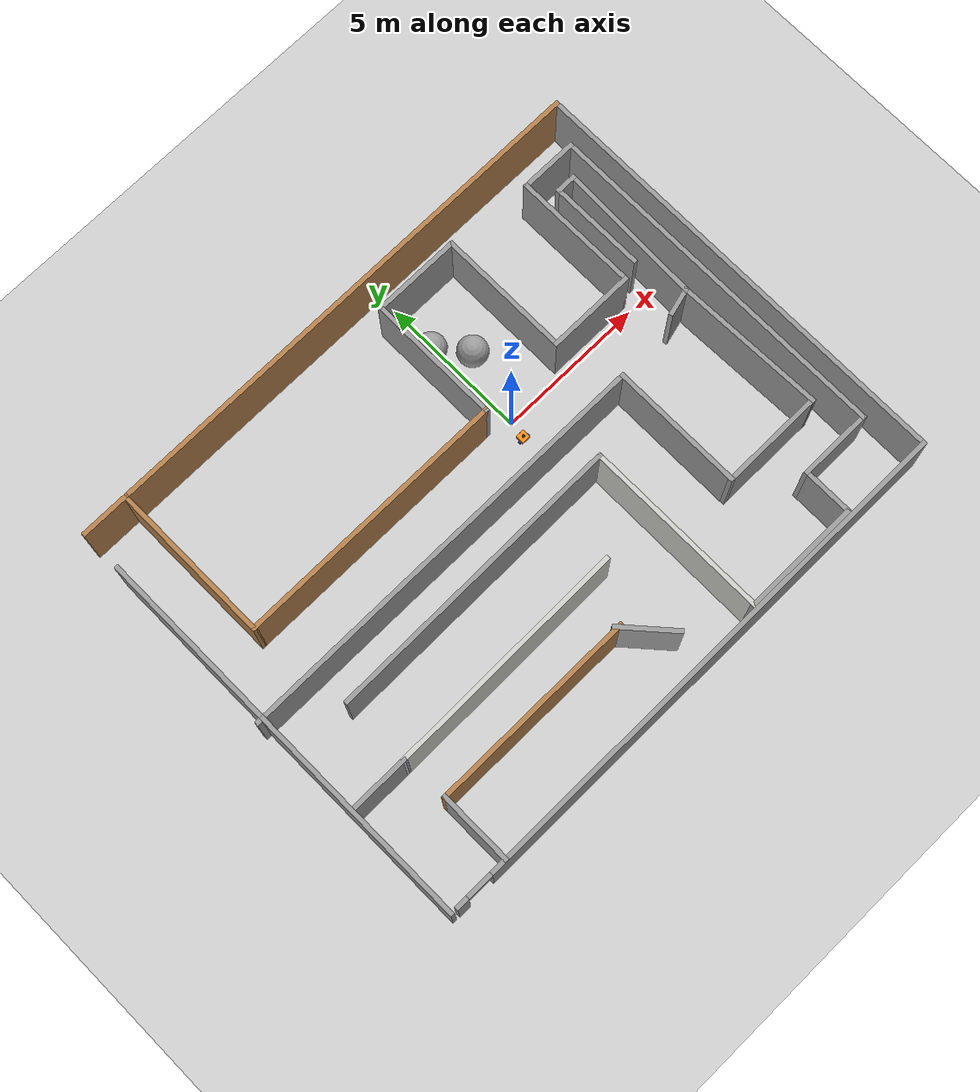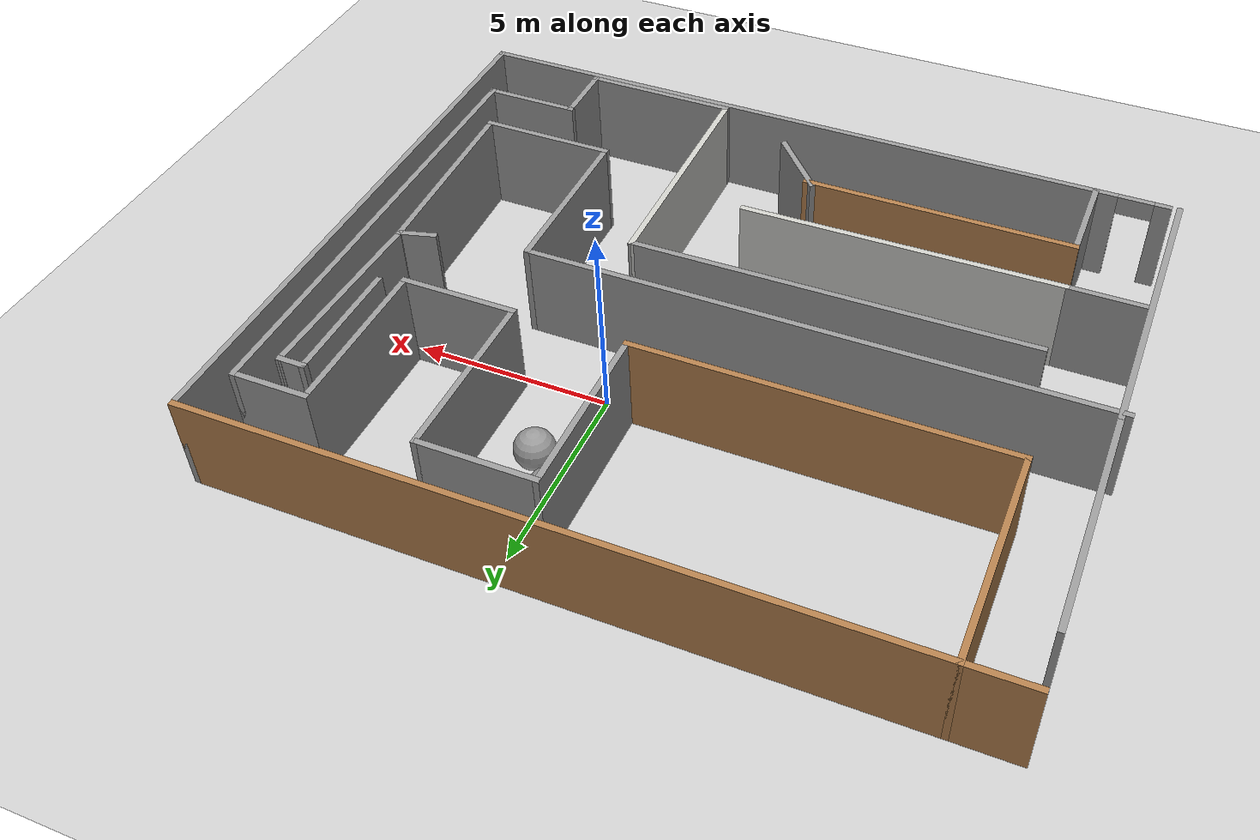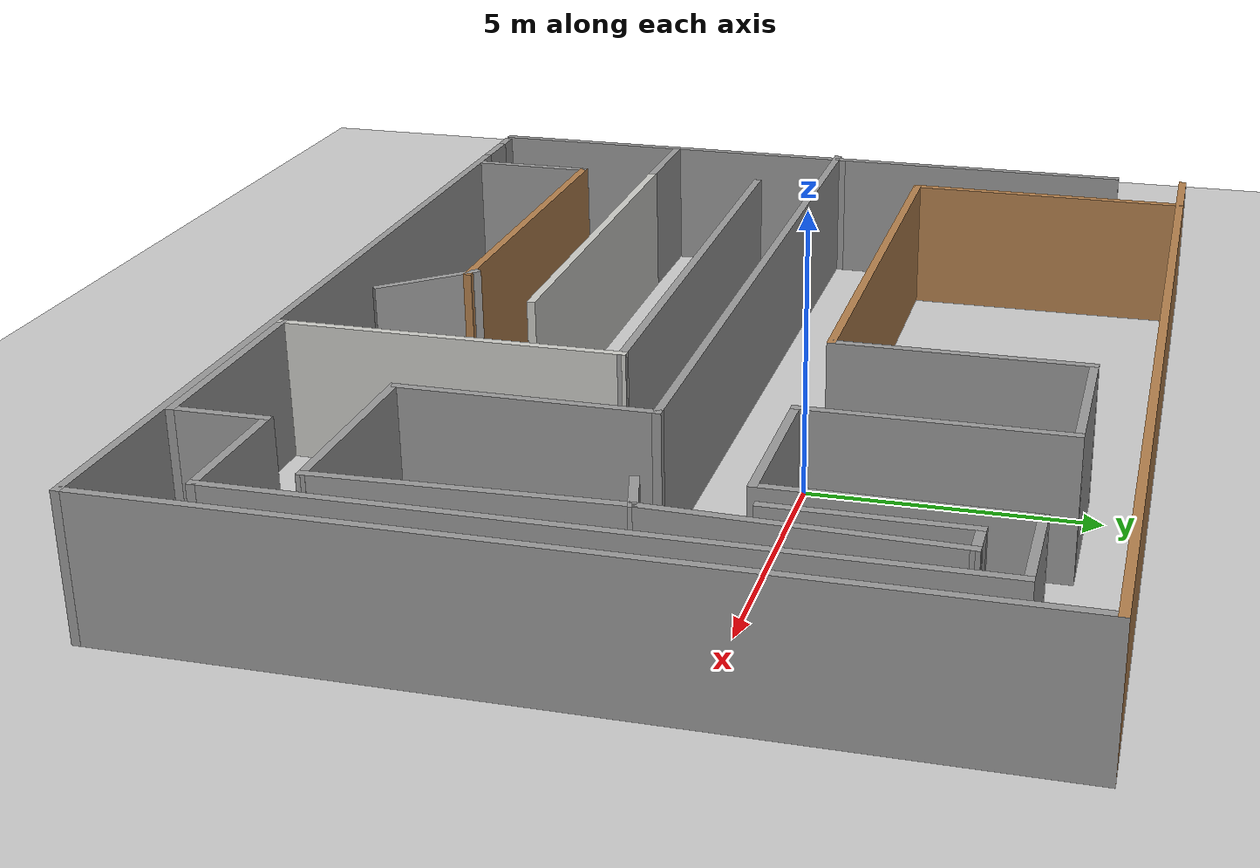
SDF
<sdf version="1.7">
 <world name="default">
  <light name="sun" type="directional">
   <pose>0 0 10 0 -0 0</pose>
   <diffuse>0.8 0.8 0.8 1</diffuse>
   <specular>0.2 0.2 0.2 1</specular>
   <attenuation>
    <range>1000</range>
    <constant>0.9</constant>
    <linear>0.01</linear>
    <quadratic>0.001</quadratic>
   </attenuation>
   <direction>-0.5 0.1 -0.9</direction>
   <spot><inner_angle>0</inner_angle><outer_angle>0</outer_angle><falloff>0</falloff></spot>
  </light>
  <model name="ground_plane">
   <static>1</static>
   <link name="link">
    <collision name="collision">
     <geometry><plane><normal>0 0 1</normal><size>100 100</size></plane></geometry>
     <surface>
      <contact><collide_bitmask>65535</collide_bitmask></contact>
      <friction><ode><mu>100</mu><mu2>50</mu2></ode></friction>
     </surface>
    </collision>
    <visual name="visual">
     <cast_shadows>0</cast_shadows>
     <geometry><plane><normal>0 0 1</normal><size>100 100</size></plane></geometry>
     <material>
      <script><uri>file://media/materials/scripts/gazebo.material</uri><name>Gazebo/Grey</name></script>
     </material>
    </visual>
   </link>
  </model>
  <gravity>0 0 -9.8</gravity>
  <magnetic_field>6e-06 2.3e-05 -4.2e-05</magnetic_field>
  <atmosphere type="adiabatic"/>
  <physics type="ode">
   <max_step_size>0.001</max_step_size>
   <real_time_factor>1</real_time_factor>
   <real_time_update_rate>1000</real_time_update_rate>
  </physics>
  <scene><ambient>0.4 0.4 0.4 1</ambient><background>0.7 0.7 0.7 1</background><shadows>1</shadows></scene>
  <spherical_coordinates>
   <surface_model>EARTH_WGS84</surface_model>
   <latitude_deg>0</latitude_deg>
   <longitude_deg>0</longitude_deg>
   <elevation>0</elevation>
   <heading_deg>0</heading_deg>
  </spherical_coordinates>
  <model name="my_bot">
   <link name="base_link">
    <inertial>
     <pose>0.076889 0 0.065222 0 -0 0</pose>
     <mass>0.9</mass>
     <inertia>
      <ixx>0.00854169</ixx>
      <ixy>0</ixy>
      <ixz>0.00217198</ixz>
      <iyy>0.0103994</iyy>
      <iyz>0</iyz>
      <izz>0.00978269</izz>
     </inertia>
    </inertial>
    <collision name="base_link_fixed_joint_lump__chassis_collision">
     <pose>0.05 0 0.075 0 -0 0</pose>
     <geometry><box><size>0.3 0.3 0.15</size></box></geometry>
    </collision>
    <collision name="base_link_fixed_joint_lump__caster_wheel_collision_1">
     <pose>0.14 0 0 0 -0 0</pose>
     <geometry><sphere><radius>0.05</radius></sphere></geometry>
     <surface><friction><ode><mu>0.0001</mu><mu2>0.0001</mu2></ode></friction></surface>
    </collision>
    <collision name="base_link_fixed_joint_lump__laser_frame_collision_2">
     <pose>0.022 0 0.212 0 -0 0</pose>
     <geometry><cylinder><length>0.04</length><radius>0.05</radius></cylinder></geometry>
    </collision>
    <visual name="base_link_fixed_joint_lump__chassis_visual">
     <pose>0.05 0 0.075 0 -0 0</pose>
     <geometry><box><size>0.3 0.3 0.15</size></box></geometry>
     <material>
      <script><name>Gazebo/Orange</name><uri>file://media/materials/scripts/gazebo.material</uri></script>
     </material>
    </visual>
    <visual name="base_link_fixed_joint_lump__camera_link_visual_1">
     <pose>0.176 0 0.181 0 0.18 0</pose>
     <geometry><box><size>0.01 0.03 0.03</size></box></geometry>
     <material>
      <script><name>Gazebo/Black</name><uri>file://media/materials/scripts/gazebo.material</uri></script>
     </material>
    </visual>
    <visual name="base_link_fixed_joint_lump__camera_link_visual_2">
     <pose>0.167049 0 0.131808 0 0.18 0</pose>
     <geometry><cylinder><length>0.1</length><radius>0.002</radius></cylinder></geometry>
     <material>
      <script><name>Gazebo/Black</name><uri>file://media/materials/scripts/gazebo.material</uri></script>
     </material>
    </visual>
    <visual name="base_link_fixed_joint_lump__caster_wheel_visual_3">
     <pose>0.14 0 0 0 -0 0</pose>
     <geometry><sphere><radius>0.05</radius></sphere></geometry>
     <material>
      <script><name>Gazebo/White</name><uri>file://media/materials/scripts/gazebo.material</uri></script>
     </material>
    </visual>
    <visual name="base_link_fixed_joint_lump__face_link_visual_4">
     <pose>0.2 0.05 0.085 3.14159 1.57079 3.14159</pose>
     <geometry><cylinder><length>0.002</length><radius>0.01</radius></cylinder></geometry>
     <material>
      <script><name>Gazebo/Black</name><uri>file://media/materials/scripts/gazebo.material</uri></script>
     </material>
    </visual>
    <visual name="base_link_fixed_joint_lump__face_link_visual_5">
     <pose>0.2 -0.05 0.085 3.14159 1.57079 3.14159</pose>
     <geometry><cylinder><length>0.002</length><radius>0.01</radius></cylinder></geometry>
     <material>
      <script><name>Gazebo/Black</name><uri>file://media/materials/scripts/gazebo.material</uri></script>
     </material>
    </visual>
    <visual name="base_link_fixed_joint_lump__face_link_visual_6">
     <pose>0.189 0 0.075 0 1.5 0</pose>
     <geometry><cylinder><length>0.02</length><radius>0.05</radius></cylinder></geometry>
     <material>
      <script><name>Gazebo/Black</name><uri>file://media/materials/scripts/gazebo.material</uri></script>
     </material>
    </visual>
    <visual name="base_link_fixed_joint_lump__laser_frame_visual_7">
     <pose>0.022 0 0.212 0 -0 0</pose>
     <geometry><cylinder><length>0.04</length><radius>0.05</radius></cylinder></geometry>
     <material>
      <script><name>Gazebo/Black</name><uri>file://media/materials/scripts/gazebo.material</uri></script>
     </material>
    </visual>
    <visual name="base_link_fixed_joint_lump__laser_frame_visual_8">
     <pose>0.022 0 0.162 0 -0 0</pose>
     <geometry><cylinder><length>0.1</length><radius>0.01</radius></cylinder></geometry>
     <material>
      <script><name>Gazebo/Black</name><uri>file://media/materials/scripts/gazebo.material</uri></script>
     </material>
    </visual>
    <sensor name="camera" type="camera">
     <visualize>1</visualize>
     <update_rate>10</update_rate>
     <camera>
      <horizontal_fov>1.089</horizontal_fov>
      <image><format>R8G8B8</format><width>640</width><height>480</height></image>
      <clip><near>0.05</near><far>8</far></clip>
     </camera>
     <plugin name="camera_controller" filename="libgazebo_ros_camera.so">
      <frame_name>camera_link_optical</frame_name>
     </plugin>
     <pose>0.176 0 0.181 0 0.18 0</pose>
    </sensor>
    <sensor name="laser" type="ray">
     <visualize>0</visualize>
     <update_rate>10</update_rate>
     <ray>
      <scan>
       <horizontal>
        <samples>360</samples>
        <min_angle>-3.14</min_angle>
        <max_angle>3.14</max_angle>
        <resolution>1</resolution>
       </horizontal>
       <vertical><samples>1</samples><min_angle>0</min_angle><max_angle>0</max_angle></vertical>
      </scan>
      <range><min>0.3</min><max>12</max></range>
     </ray>
     <plugin name="laser_controller" filename="libgazebo_ros_ray_sensor.so">
      <ros><argument>~/out:=scan</argument></ros>
      <output_type>sensor_msgs/LaserScan</output_type>
      <frame_name>laser_frame</frame_name>
     </plugin>
     <pose>0.022 0 0.212 0 -0 0</pose>
    </sensor>
   </link>
   <joint name="left_wheel_joint" type="revolute">
    <pose relative_to="base_link">0 0.175 0 -1.5708 0 0</pose>
    <parent>base_link</parent>
    <child>left_wheel</child>
    <axis>
     <xyz>0 0 1</xyz>
     <limit><lower>-1e+16</lower><upper>1e+16</upper></limit>
     <dynamics><spring_reference>0</spring_reference><spring_stiffness>0</spring_stiffness></dynamics>
    </axis>
   </joint>
   <link name="left_wheel">
    <pose relative_to="left_wheel_joint">0 0 0 0 -0 0</pose>
    <inertial>
     <mass>0.05</mass>
     <inertia>
      <ixx>3.79167e-05</ixx>
      <ixy>0</ixy>
      <ixz>0</ixz>
      <iyy>3.79167e-05</iyy>
      <iyz>0</iyz>
      <izz>6.25e-05</izz>
     </inertia>
    </inertial>
    <collision name="left_wheel_collision"><geometry><sphere><radius>0.05</radius></sphere></geometry></collision>
    <visual name="left_wheel_visual">
     <geometry><cylinder><length>0.04</length><radius>0.05</radius></cylinder></geometry>
     <material>
      <script><name>Gazebo/Blue</name><uri>file://media/materials/scripts/gazebo.material</uri></script>
     </material>
    </visual>
   </link>
   <joint name="right_wheel_joint" type="revolute">
    <pose relative_to="base_link">0 -0.175 0 1.5708 -0 0</pose>
    <parent>base_link</parent>
    <child>right_wheel</child>
    <axis>
     <xyz>0 0 -1</xyz>
     <limit><lower>-1e+16</lower><upper>1e+16</upper></limit>
     <dynamics><spring_reference>0</spring_reference><spring_stiffness>0</spring_stiffness></dynamics>
    </axis>
   </joint>
   <link name="right_wheel">
    <pose relative_to="right_wheel_joint">0 0 0 0 -0 0</pose>
    <inertial>
     <mass>0.05</mass>
     <inertia>
      <ixx>3.79167e-05</ixx>
      <ixy>0</ixy>
      <ixz>0</ixz>
      <iyy>3.79167e-05</iyy>
      <iyz>0</iyz>
      <izz>6.25e-05</izz>
     </inertia>
    </inertial>
    <collision name="right_wheel_collision">
     <geometry><sphere><radius>0.05</radius></sphere></geometry>
    </collision>
    <visual name="right_wheel_visual">
     <geometry><cylinder><length>0.04</length><radius>0.05</radius></cylinder></geometry>
     <material>
      <script><name>Gazebo/Blue</name><uri>file://media/materials/scripts/gazebo.material</uri></script>
     </material>
    </visual>
   </link>
   <static>0</static>
   <plugin name="diff_drive" filename="libgazebo_ros_diff_drive.so">
    <left_joint>left_wheel_joint</left_joint>
    <right_joint>right_wheel_joint</right_joint>
    <wheel_separation>0.35</wheel_separation>
    <wheel_diameter>0.1</wheel_diameter>
    <max_wheel_torque>200</max_wheel_torque>
    <max_wheel_acceleration>10.0</max_wheel_acceleration>
    <odometry_frame>odom</odometry_frame>
    <robot_base_frame>base_link</robot_base_frame>
    <publish_odom>1</publish_odom>
    <publish_odom_tf>1</publish_odom_tf>
    <publish_wheel_tf>1</publish_wheel_tf>
   </plugin>
   <pose>-0.061227 -0.60252 0.049997 1.5e-05 -2.2e-05 1.57424</pose>
  </model>
  <model name="maze">
   <pose>-2.3605 -1.79617 0 0 -0 0</pose>
   <link name="Wall_0">
    <collision name="Wall_0_Collision">
     <geometry><box><size>6 0.15 2.5</size></box></geometry>
     <pose>0 0 1.25 0 -0 0</pose>
    </collision>
    <visual name="Wall_0_Visual">
     <pose>0 0 1.25 0 -0 0</pose>
     <geometry><box><size>6 0.15 2.5</size></box></geometry>
     <material>
      <script><uri>file://media/materials/scripts/gazebo.material</uri><name>Gazebo/Grey</name></script>
      <ambient>1 1 1 1</ambient>
     </material>
     <meta><layer>0</layer></meta>
    </visual>
    <pose>-9.03427 3.10638 0 0 -0 1.5708</pose>
   </link>
   <link name="Wall_12">
    <collision name="Wall_12_Collision">
     <geometry><box><size>5.5 0.15 2.5</size></box></geometry>
     <pose>0 0 1.25 0 -0 0</pose>
    </collision>
    <visual name="Wall_12_Visual">
     <pose>0 0 1.25 0 -0 0</pose>
     <geometry><box><size>5.5 0.15 2.5</size></box></geometry>
     <material>
      <script><uri>file://media/materials/scripts/gazebo.material</uri><name>Gazebo/Wood</name></script>
      <ambient>1 1 1 1</ambient>
     </material>
     <meta><layer>0</layer></meta>
    </visual>
    <pose>-7.48469 4.75 0 0 -0 -1.5708</pose>
   </link>
   <link name="Wall_13">
    <collision name="Wall_13_Collision">
     <geometry><box><size>9.25 0.15 2.5</size></box></geometry>
     <pose>0 0 1.25 0 -0 0</pose>
    </collision>
    <visual name="Wall_13_Visual">
     <pose>0 0 1.25 0 -0 0</pose>
     <geometry><box><size>9.25 0.15 2.5</size></box></geometry>
     <material>
      <script><uri>file://media/materials/scripts/gazebo.material</uri><name>Gazebo/Wood</name></script>
      <ambient>1 1 1 1</ambient>
     </material>
     <meta><layer>0</layer></meta>
    </visual>
    <pose>-2.93469 2.075 0 0 -0 0</pose>
   </link>
   <link name="Wall_14">
    <collision name="Wall_14_Collision">
     <geometry><box><size>4.5 0.15 2.5</size></box></geometry>
     <pose>0 0 1.25 0 -0 0</pose>
    </collision>
    <visual name="Wall_14_Visual">
     <pose>0 0 1.25 0 -0 0</pose>
     <geometry><box><size>4.5 0.15 2.5</size></box></geometry>
     <material>
      <script><uri>file://media/materials/scripts/gazebo.material</uri><name>Gazebo/Grey</name></script>
      <ambient>1 1 1 1</ambient>
     </material>
     <meta><layer>0</layer></meta>
    </visual>
    <pose>1.61531 4.25 0 0 -0 1.5708</pose>
   </link>
   <link name="Wall_15">
    <collision name="Wall_15_Collision">
     <geometry><box><size>3 0.15 2.5</size></box></geometry>
     <pose>0 0 1.25 0 -0 0</pose>
    </collision>
    <visual name="Wall_15_Visual">
     <pose>0 0 1.25 0 -0 0</pose>
     <geometry><box><size>3 0.15 2.5</size></box></geometry>
     <material>
      <script><uri>file://media/materials/scripts/gazebo.material</uri><name>Gazebo/Grey</name></script>
      <ambient>1 1 1 1</ambient>
     </material>
     <meta><layer>0</layer></meta>
    </visual>
    <pose>3.04031 6.425 0 0 -0 0</pose>
   </link>
   <link name="Wall_16">
    <collision name="Wall_16_Collision">
     <geometry><box><size>4.5 0.15 2.5</size></box></geometry>
     <pose>0 0 1.25 0 -0 0</pose>
    </collision>
    <visual name="Wall_16_Visual">
     <pose>0 0 1.25 0 -0 0</pose>
     <geometry><box><size>4.5 0.15 2.5</size></box></geometry>
     <material>
      <script><uri>file://media/materials/scripts/gazebo.material</uri><name>Gazebo/Grey</name></script>
      <ambient>1 1 1 1</ambient>
     </material>
     <meta><layer>0</layer></meta>
    </visual>
    <pose>4.46531 4.25 0 0 -0 -1.5708</pose>
   </link>
   <link name="Wall_17">
    <collision name="Wall_17_Collision">
     <geometry><box><size>3 0.15 2.5</size></box></geometry>
     <pose>0 0 1.25 0 -0 0</pose>
    </collision>
    <visual name="Wall_17_Visual">
     <pose>0 0 1.25 0 -0 0</pose>
     <geometry><box><size>3 0.15 2.5</size></box></geometry>
     <material>
      <script><uri>file://media/materials/scripts/gazebo.material</uri><name>Gazebo/Grey</name></script>
      <ambient>1 1 1 1</ambient>
     </material>
     <meta><layer>0</layer></meta>
    </visual>
    <pose>5.89031 2.075 0 0 -0 0</pose>
   </link>
   <link name="Wall_18">
    <collision name="Wall_18_Collision">
     <geometry><box><size>4.25 0.15 2.5</size></box></geometry>
     <pose>0 0 1.25 0 -0 0</pose>
    </collision>
    <visual name="Wall_18_Visual">
     <pose>0 0 1.25 0 -0 0</pose>
     <geometry><box><size>4.25 0.15 2.5</size></box></geometry>
     <material>
      <script><uri>file://media/materials/scripts/gazebo.material</uri><name>Gazebo/Grey</name></script>
      <ambient>1 1 1 1</ambient>
     </material>
     <meta><layer>0</layer></meta>
    </visual>
    <pose>7.31531 4.125 0 0 -0 1.5708</pose>
   </link>
   <link name="Wall_19">
    <collision name="Wall_19_Collision">
     <geometry><box><size>2 0.15 2.5</size></box></geometry>
     <pose>0 0 1.25 0 -0 0</pose>
    </collision>
    <visual name="Wall_19_Visual">
     <pose>0 0 1.25 0 -0 0</pose>
     <geometry><box><size>2 0.15 2.5</size></box></geometry>
     <material>
      <script><uri>file://media/materials/scripts/gazebo.material</uri><name>Gazebo/Grey</name></script>
      <ambient>1 1 1 1</ambient>
     </material>
     <meta><layer>0</layer></meta>
    </visual>
    <pose>8.24031 6.175 0 0 -0 0</pose>
   </link>
   <link name="Wall_20">
    <collision name="Wall_20_Collision">
     <geometry><box><size>12 0.15 2.5</size></box></geometry>
     <pose>0 0 1.25 0 -0 0</pose>
    </collision>
    <visual name="Wall_20_Visual">
     <pose>0 0 1.25 0 -0 0</pose>
     <geometry><box><size>12 0.15 2.5</size></box></geometry>
     <material>
      <script><uri>file://media/materials/scripts/gazebo.material</uri><name>Gazebo/Grey</name></script>
      <ambient>1 1 1 1</ambient>
     </material>
     <meta><layer>0</layer></meta>
    </visual>
    <pose>9.16531 0.25 0 0 -0 -1.5708</pose>
   </link>
   <link name="Wall_21">
    <collision name="Wall_21_Collision">
     <geometry><box><size>2.5 0.15 2.5</size></box></geometry>
     <pose>0 0 1.25 0 -0 0</pose>
    </collision>
    <visual name="Wall_21_Visual">
     <pose>0 0 1.25 0 -0 0</pose>
     <geometry><box><size>2.5 0.15 2.5</size></box></geometry>
     <material>
      <script><uri>file://media/materials/scripts/gazebo.material</uri><name>Gazebo/Grey</name></script>
      <ambient>1 1 1 1</ambient>
     </material>
     <meta><layer>0</layer></meta>
    </visual>
    <pose>7.99031 -5.675 0 0 -0 3.14159</pose>
   </link>
   <link name="Wall_24">
    <collision name="Wall_24_Collision">
     <geometry><box><size>3.25 0.15 2.5</size></box></geometry>
     <pose>0 0 1.25 0 -0 0</pose>
    </collision>
    <visual name="Wall_24_Visual">
     <pose>0 0 1.25 0 -0 0</pose>
     <geometry><box><size>3.25 0.15 2.5</size></box></geometry>
     <material>
      <script><uri>file://media/materials/scripts/gazebo.material</uri><name>Gazebo/Grey</name></script>
      <ambient>1 1 1 1</ambient>
     </material>
     <meta><layer>0</layer></meta>
    </visual>
    <pose>7.89436 3.84865 0 0 -0 1.5708</pose>
   </link>
   <link name="Wall_25">
    <collision name="Wall_25_Collision">
     <geometry><box><size>0.75 0.15 2.5</size></box></geometry>
     <pose>0 0 1.25 0 -0 0</pose>
    </collision>
    <visual name="Wall_25_Visual">
     <pose>0 0 1.25 0 -0 0</pose>
     <geometry><box><size>0.75 0.15 2.5</size></box></geometry>
     <material>
      <script><uri>file://media/materials/scripts/gazebo.material</uri><name>Gazebo/Grey</name></script>
      <ambient>1 1 1 1</ambient>
     </material>
     <meta><layer>0</layer></meta>
    </visual>
    <pose>8.19435 5.39865 0 0 -0 0</pose>
   </link>
   <link name="Wall_26">
    <collision name="Wall_26_Collision">
     <geometry><box><size>4.94977 0.15 2.5</size></box></geometry>
     <pose>0 0 1.25 0 -0 0</pose>
    </collision>
    <visual name="Wall_26_Visual">
     <pose>0 0 1.25 0 -0 0</pose>
     <geometry><box><size>4.94977 0.15 2.5</size></box></geometry>
     <material>
      <script><uri>file://media/materials/scripts/gazebo.material</uri><name>Gazebo/Grey</name></script>
      <ambient>1 1 1 1</ambient>
     </material>
     <meta><layer>0</layer></meta>
    </visual>
    <pose>8.41298 3.00015 0 0 -0 -1.60471</pose>
   </link>
   <link name="Wall_27">
    <collision name="Wall_27_Collision">
     <geometry><box><size>1 0.15 2.5</size></box></geometry>
     <pose>0 0 1.25 0 -0 0</pose>
    </collision>
    <visual name="Wall_27_Visual">
     <pose>0 0 1.25 0 -0 0</pose>
     <geometry><box><size>1 0.15 2.5</size></box></geometry>
     <material>
      <script><uri>file://media/materials/scripts/gazebo.material</uri><name>Gazebo/Grey</name></script>
      <ambient>1 1 1 1</ambient>
     </material>
     <meta><layer>0</layer></meta>
    </visual>
    <pose>7.92109 0.491647 0 0 -0 -2.87979</pose>
   </link>
   <link name="Wall_29">
    <collision name="Wall_29_Collision">
     <geometry><box><size>5.05569 0.15 2.5</size></box></geometry>
     <pose>0 0 1.25 0 -0 0</pose>
    </collision>
    <visual name="Wall_29_Visual">
     <pose>0 0 1.25 0 -0 0</pose>
     <geometry><box><size>5.05569 0.15 2.5</size></box></geometry>
     <material>
      <script><uri>file://media/materials/scripts/gazebo.material</uri><name>Gazebo/Grey</name></script>
      <ambient>1 1 1 1</ambient>
     </material>
     <meta><layer>0</layer></meta>
    </visual>
    <pose>8.41298 -1.84985 0 0 -0 -1.53762</pose>
   </link>
   <link name="Wall_30">
    <collision name="Wall_30_Collision">
     <geometry><box><size>3.5 0.15 2.5</size></box></geometry>
     <pose>0 0 1.25 0 -0 0</pose>
    </collision>
    <visual name="Wall_30_Visual">
     <pose>0 0 1.25 0 -0 0</pose>
     <geometry><box><size>3.5 0.15 2.5</size></box></geometry>
     <material>
      <script><uri>file://media/materials/scripts/gazebo.material</uri><name>Gazebo/Grey</name></script>
      <ambient>1 1 1 1</ambient>
     </material>
     <meta><layer>0</layer></meta>
    </visual>
    <pose>6.81935 -4.30135 0 0 -0 3.14159</pose>
   </link>
   <link name="Wall_31">
    <collision name="Wall_31_Collision">
     <geometry><box><size>4.5 0.15 2.5</size></box></geometry>
     <pose>0 0 1.25 0 -0 0</pose>
    </collision>
    <visual name="Wall_31_Visual">
     <pose>0 0 1.25 0 -0 0</pose>
     <geometry><box><size>4.5 0.15 2.5</size></box></geometry>
     <material>
      <script><uri>file://media/materials/scripts/gazebo.material</uri><name>Gazebo/Grey</name></script>
      <ambient>1 1 1 1</ambient>
     </material>
     <meta><layer>0</layer></meta>
    </visual>
    <pose>5.14435 -2.12635 0 0 -0 1.5708</pose>
   </link>
   <link name="Wall_32">
    <collision name="Wall_32_Collision">
     <geometry><box><size>14.5 0.15 2.5</size></box></geometry>
     <pose>0 0 1.25 0 -0 0</pose>
    </collision>
    <visual name="Wall_32_Visual">
     <pose>0 0 1.25 0 -0 0</pose>
     <geometry><box><size>14.5 0.15 2.5</size></box></geometry>
     <material>
      <script><uri>file://media/materials/scripts/gazebo.material</uri><name>Gazebo/Grey</name></script>
      <ambient>1 1 1 1</ambient>
     </material>
     <meta><layer>0</layer></meta>
    </visual>
    <pose>-2.03065 0.048651 0 0 -0 3.14159</pose>
   </link>
   <link name="Wall_34">
    <collision name="Wall_34_Collision">
     <geometry><box><size>1.75 0.15 2.5</size></box></geometry>
     <pose>0 0 1.25 0 -0 0</pose>
    </collision>
    <visual name="Wall_34_Visual">
     <pose>0 0 1.25 0 -0 0</pose>
     <geometry><box><size>1.75 0.15 2.5</size></box></geometry>
     <material>
      <script><uri>file://media/materials/scripts/gazebo.material</uri><name>Gazebo/Grey</name></script>
      <ambient>1 1 1 1</ambient>
     </material>
     <meta><layer>0</layer></meta>
    </visual>
    <pose>6.81531 -6.475 0 0 -0 -1.5708</pose>
   </link>
   <link name="Wall_35">
    <collision name="Wall_35_Collision">
     <geometry><box><size>4 0.15 2.5</size></box></geometry>
     <pose>0 0 1.25 0 -0 0</pose>
    </collision>
    <visual name="Wall_35_Visual">
     <pose>0 0 1.25 0 -0 0</pose>
     <geometry><box><size>4 0.15 2.5</size></box></geometry>
     <material>
      <script><uri>file://media/materials/scripts/gazebo.material</uri><name>Gazebo/Grey</name></script>
      <ambient>1 1 1 1</ambient>
     </material>
     <meta><layer>0</layer></meta>
    </visual>
    <pose>4.89031 -7.275 0 0 -0 3.14159</pose>
   </link>
   <link name="Wall_36">
    <collision name="Wall_36_Collision">
     <geometry><box><size>6.25 0.15 2.5</size></box></geometry>
     <pose>0 0 1.25 0 -0 0</pose>
    </collision>
    <visual name="Wall_36_Visual">
     <pose>0 0 1.25 0 -0 0</pose>
     <geometry><box><size>6.25 0.15 2.5</size></box></geometry>
     <material>
      <script><uri>file://media/materials/scripts/gazebo.material</uri><name>Gazebo/CeilingTiled</name></script>
      <ambient>1 1 1 1</ambient>
     </material>
     <meta><layer>0</layer></meta>
    </visual>
    <pose>2.96531 -4.225 0 0 -0 1.5708</pose>
   </link>
   <link name="Wall_37">
    <collision name="Wall_37_Collision">
     <geometry><box><size>10.169 0.15 2.5</size></box></geometry>
     <pose>0 0 1.25 0 -0 0</pose>
    </collision>
    <visual name="Wall_37_Visual">
     <pose>0 0 1.25 0 -0 0</pose>
     <geometry><box><size>10.169 0.15 2.5</size></box></geometry>
     <material>
      <script><uri>file://media/materials/scripts/gazebo.material</uri><name>Gazebo/Grey</name></script>
      <ambient>1 1 1 1</ambient>
     </material>
     <meta><layer>0</layer></meta>
    </visual>
    <pose>-2.04401 -1.21568 0 0 -0 -3.13347</pose>
   </link>
   <link name="Wall_39">
    <collision name="Wall_39_Collision">
     <geometry><box><size>8.16904 0.15 2.5</size></box></geometry>
     <pose>0 0 1.25 0 -0 0</pose>
    </collision>
    <visual name="Wall_39_Visual">
     <pose>0 0 1.25 0 -0 0</pose>
     <geometry><box><size>8.16904 0.15 2.5</size></box></geometry>
     <material>
      <script><uri>file://media/materials/scripts/gazebo.material</uri><name>Gazebo/CeilingTiled</name></script>
      <ambient>1 1 1 1</ambient>
     </material>
     <meta><layer>0</layer></meta>
    </visual>
    <pose>-3.04401 -3.48432 0 0 -0 0.010147</pose>
   </link>
   <link name="Wall_4">
    <collision name="Wall_4_Collision">
     <geometry><box><size>19 0.15 2.5</size></box></geometry>
     <pose>0 0 1.25 0 -0 0</pose>
    </collision>
    <visual name="Wall_4_Visual">
     <pose>0 0 1.25 0 -0 0</pose>
     <geometry><box><size>19 0.15 2.5</size></box></geometry>
     <material>
      <script><uri>file://media/materials/scripts/gazebo.material</uri><name>Gazebo/Wood</name></script>
      <ambient>1 1 1 1</ambient>
     </material>
     <meta><layer>0</layer></meta>
    </visual>
    <pose>0.394266 7.425 0 0 -0 0</pose>
   </link>
   <link name="Wall_41">
    <collision name="Wall_41_Collision">
     <geometry><box><size>2.02339 0.15 2.5</size></box></geometry>
     <pose>0 0 1.25 0 -0 0</pose>
    </collision>
    <visual name="Wall_41_Visual">
     <pose>0 0 1.25 0 -0 0</pose>
     <geometry><box><size>2.02339 0.15 2.5</size></box></geometry>
     <material>
      <script><uri>file://media/materials/scripts/gazebo.material</uri><name>Gazebo/Grey</name></script>
      <ambient>1 1 1 1</ambient>
     </material>
     <meta><layer>0</layer></meta>
    </visual>
    <pose>0.344901 -5.67322 0 0 -0 2.29473</pose>
   </link>
   <link name="Wall_43">
    <collision name="Wall_43_Collision">
     <geometry><box><size>7 0.15 2.5</size></box></geometry>
     <pose>0 0 1.25 0 -0 0</pose>
    </collision>
    <visual name="Wall_43_Visual">
     <pose>0 0 1.25 0 -0 0</pose>
     <geometry><box><size>7 0.15 2.5</size></box></geometry>
     <material>
      <script><uri>file://media/materials/scripts/gazebo.material</uri><name>Gazebo/Wood</name></script>
      <ambient>1 1 1 1</ambient>
     </material>
     <meta><layer>0</layer></meta>
    </visual>
    <pose>-3.53776 -5.05282 0 0 -0 3.14159</pose>
   </link>
   <link name="Wall_45">
    <collision name="Wall_45_Collision">
     <geometry><box><size>2 0.15 2.5</size></box></geometry>
     <pose>0 0 1.25 0 -0 0</pose>
    </collision>
    <visual name="Wall_45_Visual">
     <pose>0 0 1.25 0 -0 0</pose>
     <geometry><box><size>2 0.15 2.5</size></box></geometry>
     <material>
      <script><uri>file://media/materials/scripts/gazebo.material</uri><name>Gazebo/Grey</name></script>
      <ambient>1 1 1 1</ambient>
     </material>
     <meta><layer>0</layer></meta>
    </visual>
    <pose>-7.97832 -3.525 0 0 -0 3.14159</pose>
   </link>
   <link name="Wall_47">
    <collision name="Wall_47_Collision">
     <geometry><box><size>2.5 0.15 2.5</size></box></geometry>
     <pose>0 0 1.25 0 -0 0</pose>
    </collision>
    <visual name="Wall_47_Visual">
     <pose>0 0 1.25 0 -0 0</pose>
     <geometry><box><size>2.5 0.15 2.5</size></box></geometry>
     <material>
      <script><uri>file://media/materials/scripts/gazebo.material</uri><name>Gazebo/Grey</name></script>
      <ambient>1 1 1 1</ambient>
     </material>
     <meta><layer>0</layer></meta>
    </visual>
    <pose>-6.96276 -6.22782 0 0 -0 -1.5708</pose>
   </link>
   <link name="Wall_5">
    <collision name="Wall_5_Collision">
     <geometry><box><size>15 0.15 2.5</size></box></geometry>
     <pose>0 0 1.25 0 -0 0</pose>
    </collision>
    <visual name="Wall_5_Visual">
     <pose>0 0 1.25 0 -0 0</pose>
     <geometry><box><size>15 0.15 2.5</size></box></geometry>
     <material>
      <script><uri>file://media/materials/scripts/gazebo.material</uri><name>Gazebo/Grey</name></script>
      <ambient>1 1 1 1</ambient>
     </material>
     <meta><layer>0</layer></meta>
    </visual>
    <pose>9.81927 0 0 0 -0 -1.5708</pose>
   </link>
   <link name="Wall_6">
    <pose>0.519266 -7.425 0 0 -0 3.14159</pose>
    <visual name="Wall_6_Visual_0">
     <pose>-0.666409 0 1.25 0 -0 0</pose>
     <geometry><box><size>17.4172 0.15 2.5</size></box></geometry>
     <material>
      <script><uri>file://media/materials/scripts/gazebo.material</uri><name>Gazebo/Grey</name></script>
      <ambient>1 1 1 1</ambient>
     </material>
     <meta><layer>0</layer></meta>
    </visual>
    <collision name="Wall_6_Collision_0">
     <geometry><box><size>17.4172 0.15 2.5</size></box></geometry>
     <pose>-0.666409 0 1.25 0 -0 0</pose>
    </collision>
    <visual name="Wall_6_Visual_1">
     <pose>9.15859 0 1.25 0 -0 0</pose>
     <geometry><box><size>0.432818 0.15 2.5</size></box></geometry>
     <material>
      <script><uri>file://media/materials/scripts/gazebo.material</uri><name>Gazebo/Grey</name></script>
      <ambient>1 1 1 1</ambient>
     </material>
     <meta><layer>0</layer></meta>
    </visual>
    <collision name="Wall_6_Collision_1">
     <geometry><box><size>0.432818 0.15 2.5</size></box></geometry>
     <pose>9.15859 0 1.25 0 -0 0</pose>
    </collision>
    <visual name="Wall_6_Visual_2">
     <pose>8.49218 0 2.25 0 -0 0</pose>
     <geometry><box><size>0.9 0.15 0.5</size></box></geometry>
     <material>
      <script><uri>file://media/materials/scripts/gazebo.material</uri><name>Gazebo/Grey</name></script>
      <ambient>1 1 1 1</ambient>
     </material>
     <meta><layer>0</layer></meta>
    </visual>
    <collision name="Wall_6_Collision_2">
     <geometry><box><size>0.9 0.15 0.5</size></box></geometry>
     <pose>8.49218 0 2.25 0 -0 0</pose>
    </collision>
   </link>
   <link name="Wall_8">
    <collision name="Wall_8_Collision">
     <geometry><box><size>7.75 0.15 2.5</size></box></geometry>
     <pose>0 0 1.25 0 -0 0</pose>
    </collision>
    <visual name="Wall_8_Visual">
     <pose>0 0 1.25 0 -0 0</pose>
     <geometry><box><size>7.75 0.15 2.5</size></box></geometry>
     <material>
      <script><uri>file://media/materials/scripts/gazebo.material</uri><name>Gazebo/Grey</name></script>
      <ambient>1 1 1 1</ambient>
     </material>
     <meta><layer>0</layer></meta>
    </visual>
    <pose>-9.03427 -3.61862 0 0 -0 -1.5708</pose>
   </link>
   <static>1</static>
  </model>
  <model name="unit_sphere">
   <pose>-0.144677 3.26793 0.5 0 -0 0</pose>
   <link name="link">
    <inertial>
     <mass>1</mass>
     <inertia><ixx>0.1</ixx><ixy>0</ixy><ixz>0</ixz><iyy>0.1</iyy><iyz>0</iyz><izz>0.1</izz></inertia>
    </inertial>
    <collision name="collision"><geometry><sphere><radius>0.5</radius></sphere></geometry></collision>
    <visual name="visual">
     <geometry><sphere><radius>0.5</radius></sphere></geometry>
     <material>
      <script><name>Gazebo/Grey</name><uri>file://media/materials/scripts/gazebo.material</uri></script>
     </material>
    </visual>
   </link>
  </model>
  <model name="unit_sphere_0">
   <pose>0.673554 2.32296 0.5 0 -0 0</pose>
   <link name="link">
    <inertial>
     <mass>1</mass>
     <inertia><ixx>0.1</ixx><ixy>0</ixy><ixz>0</ixz><iyy>0.1</iyy><iyz>0</iyz><izz>0.1</izz></inertia>
    </inertial>
    <collision name="collision"><geometry><sphere><radius>0.5</radius></sphere></geometry></collision>
    <visual name="visual">
     <geometry><sphere><radius>0.5</radius></sphere></geometry>
     <material>
      <script><name>Gazebo/Grey</name><uri>file://media/materials/scripts/gazebo.material</uri></script>
     </material>
    </visual>
   </link>
  </model>
 </world>
</sdf>
